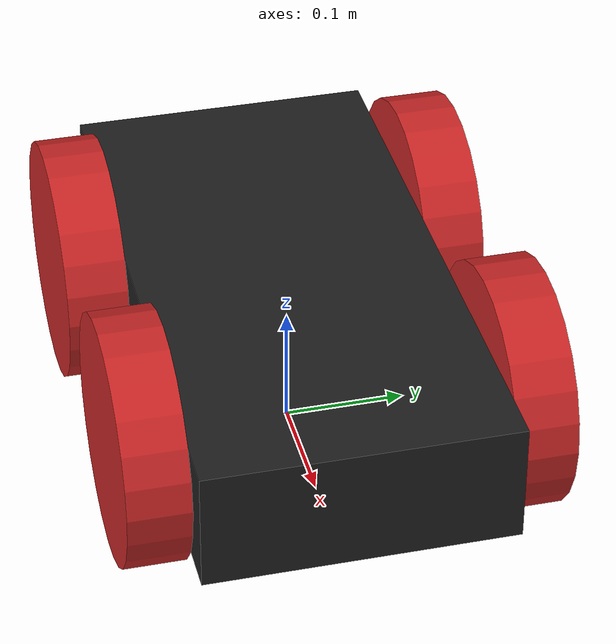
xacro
<?xml version="1.0"?>
<robot name="robot_1" xmlns:xacro="http://ros.org/wiki/xacro">

  <xacro:arg name="laser_enabled" default="false" />
  <xacro:arg name="camera_enabled" default="false" />
  <xacro:arg name="imu_enabled" default="false" />
	<xacro:arg name="robot_namespace" default="/" />

	<xacro:include filename="$(find my_robot)/urdf/laser.urdf.xacro"/>
  <xacro:include filename="$(find my_robot)/urdf/3d_camera.xacro"/>
  <xacro:include filename="$(find my_robot)/urdf/imu.xacro"/>
  <xacro:include filename="$(find my_robot)/urdf/wheel.xacro"/>
  <xacro:include filename="$(find my_robot)/urdf/properties_and_inertia.xacro"/>

  <link name="base_footprint"/>

  <joint name="base_joint" type="fixed">
    <origin xyz="0 0 ${wheel_radius}" rpy="0 0 0" />
    <parent link="base_footprint" />
    <child link="base_link" />
  </joint>

	<link name="base_link">
  	<visual>
    		<origin xyz="0 0 0" rpy="0 0 0" />
    		<geometry>
      		<box size="${base_length} ${base_width} ${base_height}"/>
    		</geometry>
  	</visual>
  	<collision>
   		<origin xyz="0 0 0" rpy="0 0 0" />
    		<geometry>
      		<box size="${base_length} ${base_width} ${base_height}"/>
    		</geometry>
  	</collision>
    <inertial>
      <mass value="1" />
      <origin xyz="0 0 0" />
      <xacro:box_inertia mass="1" l="${base_length}" w="${base_width}" h="${base_height}"/>
    </inertial>
	</link>

  <gazebo reference="base_link">
    <material>Gazebo/Black</material>
  </gazebo>

  <!-- Laser -->
	<xacro:if value="$(arg laser_enabled)">
    <xacro:laser prefix="base_link"/>
  </xacro:if>

  <!-- 3D Camera -->
  <xacro:if value="$(arg camera_enabled)">
    <xacro:depth_camera prefix="base_link"/>
  </xacro:if>

  <!-- IMU sensor -->
  <xacro:if value="$(arg imu_enabled)">
    <xacro:imu_sensor prefix="base_link"/>
  </xacro:if>

  <!-- Wheels -->
  <xacro:wheel prefix="front_right">
    <origin xyz="${base_length/4} -${base_width/2+wheel_thickness/2} 0" rpy="0 0 0" />
  </xacro:wheel>
  <xacro:wheel prefix="front_left">
    <origin xyz="${base_length/4} ${base_width/2+wheel_thickness/2} 0" rpy="0 0 0" />
  </xacro:wheel>
  <xacro:wheel prefix="back_right">
    <origin xyz="${-base_length/4} -${base_width/2+wheel_thickness/2} 0" rpy="0 0 0" />
  </xacro:wheel>
  <xacro:wheel prefix="back_left">
    <origin xyz="${-base_length/4} ${base_width/2+wheel_thickness/2} 0" rpy="0 0 0" />
  </xacro:wheel>

  <!-- Plugin -->

  <gazebo>
    <plugin name="object_controller" filename="libgazebo_ros_planar_move.so">
      <commandTopic>cmd_vel</commandTopic>
      <odometryTopic>odom</odometryTopic>
      <odometryFrame>odom</odometryFrame>
      <odometryRate>20.0</odometryRate>
      <robotNamespace>/</robotNamespace>
      <enableYAxis>false</enableYAxis>
      <leftFrontJoint>front_left_wheel_joint</leftFrontJoint>
      <rightFrontJoint>front_right_wheel_joint</rightFrontJoint>
      <leftRearJoint>back_left_wheel_joint</leftRearJoint>
      <rightRearJoint>back_right_wheel_joint</rightRearJoint>
      <wheelSeparation>${base_width+wheel_thickness}</wheelSeparation>
      <wheelDiameter>${wheel_radius*2}</wheelDiameter>
      <robotBaseFrame>base_footprint</robotBaseFrame>
    </plugin>
  </gazebo>

</robot>

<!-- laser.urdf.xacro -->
<robot xmlns:xacro="http://ros.org/wiki/xacro">

  <xacro:include filename="$(find my_robot)/urdf/properties_and_inertia.xacro" />

  <xacro:macro name="laser" params="prefix">

    <joint name="laser_mount_joint" type="fixed">
      <origin xyz="${base_length/4} 0 ${base_height/2+laser_mount_height/2}" rpy="0 0 0" />
      <parent link="${prefix}" />
      <child link="laser_mount" />
    </joint>

    <link name="laser_mount">
    <inertial>
        <origin xyz="0 0 0" rpy="0 0 0" />
        <mass value="0.00001" />
        <xacro:cylinder_inertia mass="0.00001" r="${laser_mount_radius}" l="${laser_mount_height}" />
    </inertial>
    <visual>
        <origin xyz="0 0 0" rpy="0 0 0" />
        <geometry>
          <cylinder radius="${laser_mount_radius}" length="${laser_mount_height}"/>
        </geometry>
    </visual>
    <collision>
        <origin xyz="0 0 0" rpy="0 0 0"/>
        <geometry>
          <cylinder radius="${laser_mount_radius}" length="${laser_mount_height}"/>
        </geometry>
    </collision>
    </link>

    <joint name="laser_joint" type="fixed">
      <origin xyz="0 0 ${laser_mount_height/2+laser_height/2}" rpy="0 0 0" />
      <parent link="laser_mount" />
      <child link="laser" />
    </joint>

    <link name="laser">
    <inertial>
        <origin xyz="0 0 0" rpy="0 0 0" />
        <mass value="0.00001" />
        <xacro:cylinder_inertia mass="0.00001" r="${laser_radius}" l="${laser_height}" />
    </inertial>
    <visual>
        <origin xyz="0 0 0" rpy="0 0 0" />
        <geometry>
          <cylinder radius="${laser_radius}" length="${laser_height}"/>
        </geometry>
    </visual>
    <collision>
        <origin xyz="0 0 0" rpy="0 0 0"/>
        <geometry>
        <cylinder radius="0.05" length="0.1"/>
        </geometry>
    </collision>
    </link>

    <gazebo reference="laser">
      <material>Gazebo/Red</material>
      <sensor type="ray" name="head_hokuyo_sensor">
        <pose>0 0 0 0 0 0</pose>
        <visualize>false</visualize>
        <update_rate>20</update_rate>
        <ray>
          <scan>
            <horizontal>
              <samples>720</samples>
              <resolution>1</resolution>
              <min_angle>-${pi}</min_angle>
              <max_angle>${pi}</max_angle>
            </horizontal>
          </scan>
          <range>
            <min>0.10</min>
            <max>10.0</max>
            <resolution>0.01</resolution>
          </range>
          <noise>
            <type>gaussian</type>
            <mean>0.0</mean>
            <stddev>0.01</stddev>
          </noise>
        </ray>
        <plugin name="gazebo_ros_head_hokuyo_controller" filename="libgazebo_ros_laser.so">
          <topicName>robot1/scan</topicName>
          <frameName>laser</frameName>
        </plugin>
      </sensor>
    </gazebo>

    <gazebo reference="laser_mount">
      <material>Gazebo/Black</material>
    </gazebo>
  </xacro:macro>

</robot>

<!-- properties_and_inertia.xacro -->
<robot xmlns:xacro="http://www.ros.org/wiki/xacro">
	<xacro:property name="pi" value="3.14159"/>
	<xacro:property name="scale" value="1"/>

  	<xacro:property name="base_length" value="${scale*0.5}" />
  	<xacro:property name="base_width" value="${scale*0.25}" />
  	<xacro:property name="base_height" value="${scale*0.1}" />

  	<xacro:property name="wheel_radius" value="${scale*0.1}" />
  	<xacro:property name="wheel_thickness" value="${scale*0.05}" />
  	<xacro:property name="caster_wheel_radius" value="${wheel_radius/2+0.024}" />

  	<xacro:property name="laser_mount_radius" value="${scale*0.05}" />
  	<xacro:property name="laser_mount_height" value="${scale*0.05}" />

  	<xacro:property name="laser_radius" value="${scale*0.05}" />
  	<xacro:property name="laser_height" value="${scale*0.05}" />

  	<xacro:property name="depth_camera_length" value="${scale*0.01}" />
  	<xacro:property name="depth_camera_width" value="${scale*0.1}" />
  	<xacro:property name="depth_camera_height" value="${scale*0.02}" />

  	<xacro:property name="imu_length" value="${scale*0.1}" />
  	<xacro:property name="imu_width" value="${scale*0.1}" />
  	<xacro:property name="imu_height" value="${scale*0.01}" />

	<macro name="cylinder_inertia" params="mass r l">
		<inertia  ixx="${mass*(3*r*r+l*l)/12}" ixy = "0" ixz = "0"
				iyy="${mass*(3*r*r+l*l)/12}" iyz = "0"
	            izz="${mass*(r*r)/2}" />
	</macro>

	<macro name="box_inertia" params="mass l w h">
		<inertia  ixx="${mass*(w*w+h*h)/12}" ixy = "0" ixz = "0"
	            iyy="${mass*(l*l+h*h)/12}" iyz = "0"
	            izz="${mass*(l*l+w*w)/12}" />
	</macro>

	<macro name="sphere_inertia" params="mass r">
		<inertia  ixx="${2*(mass*r*r)/5}" ixy = "0" ixz = "0"
	            iyy="${2*(mass*r*r)/5}" iyz = "0"
	            izz="${2*(mass*r*r)/5}" />
	</macro>

</robot>

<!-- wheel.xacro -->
<robot xmlns:xacro="http://ros.org/wiki/xacro">

  <xacro:include filename="$(find my_robot)/urdf/properties_and_inertia.xacro" />

  <xacro:macro name="wheel" params="prefix *joint_pose">

    <link name="${prefix}_wheel">
      <inertial>
          <origin xyz="0 0 0" rpy="${pi/2} 0 0" />
          <mass value="1" />
          <xacro:cylinder_inertia mass="1" r="${wheel_radius}" l="${wheel_thickness}" />
      </inertial>
      <visual>
          <origin xyz="0 0 0" rpy="${pi/2} 0 0" />
          <geometry>
            <cylinder radius="${wheel_radius}" length="${wheel_thickness}"/>
          </geometry>
      </visual>
      <collision>
          <origin xyz="0 0 0" rpy="${pi/2} 0 0"/>
          <geometry>
          <cylinder radius="${wheel_radius}" length="${wheel_thickness}"/>
          </geometry>
      </collision>
    </link>

    <gazebo reference="${prefix}_wheel">
      <material>Gazebo/Red</material>
      <mu1 value="1.0"/>
      <mu2 value="1.0"/>
      <kp value="10000.0" />
      <kd value="1.0" />
      <fdir1 value="0 0 0"/>
      <slip1>0.5</slip1>
      <slip2>0</slip2>
    </gazebo>

    <joint name="${prefix}_wheel_joint" type="continuous">
      <parent link="base_link" />
      <child link="${prefix}_wheel" />
      <xacro:insert_block name="joint_pose"/>
      <axis xyz="0 1 0" rpy="0 0 0" />
    </joint>

    <transmission name="${prefix}_wheel_trans" type="SimpleTransmission">
      <type>transmission_interface/SimpleTransmission</type>
      <actuator name="${prefix}_wheel_motor">
        <mechanicalReduction>1</mechanicalReduction>
      </actuator>
      <joint name="${prefix}_wheel_joint">
        <hardwareInterface>hardware_interface/VelocityJointInterface</hardwareInterface>
      </joint>
    </transmission>

  </xacro:macro>

</robot>
